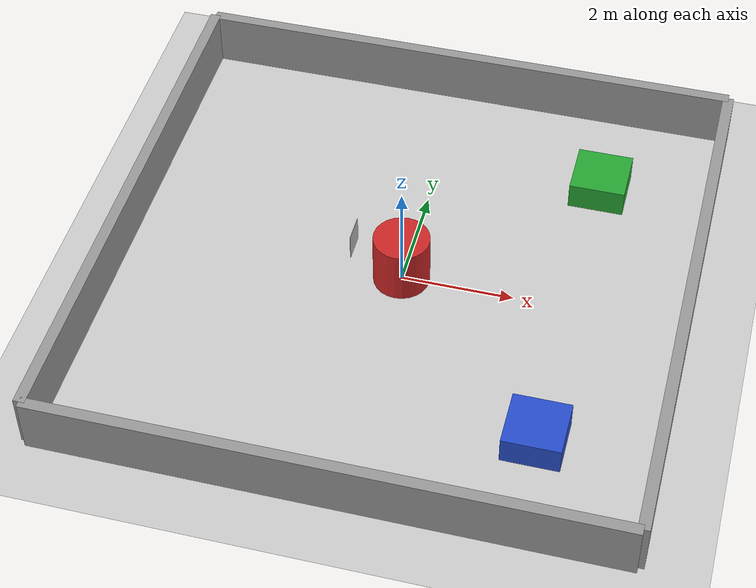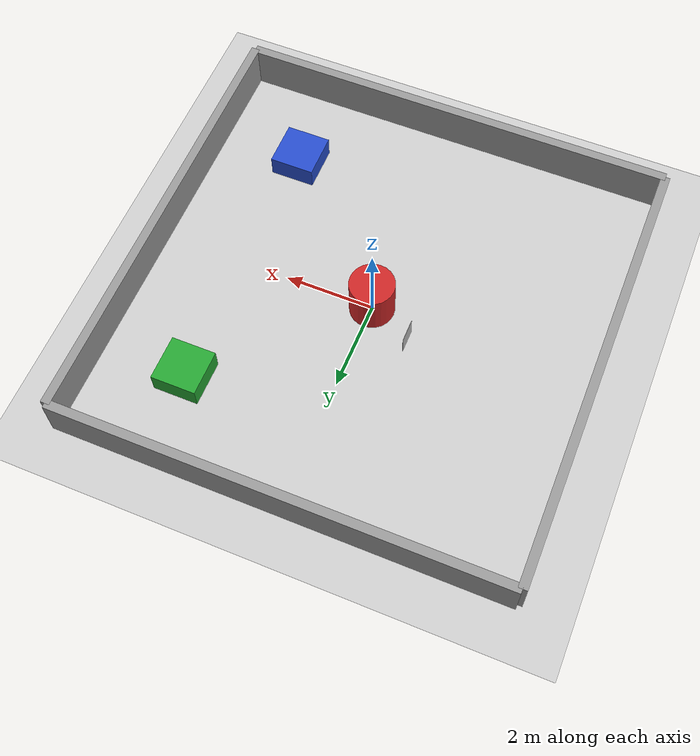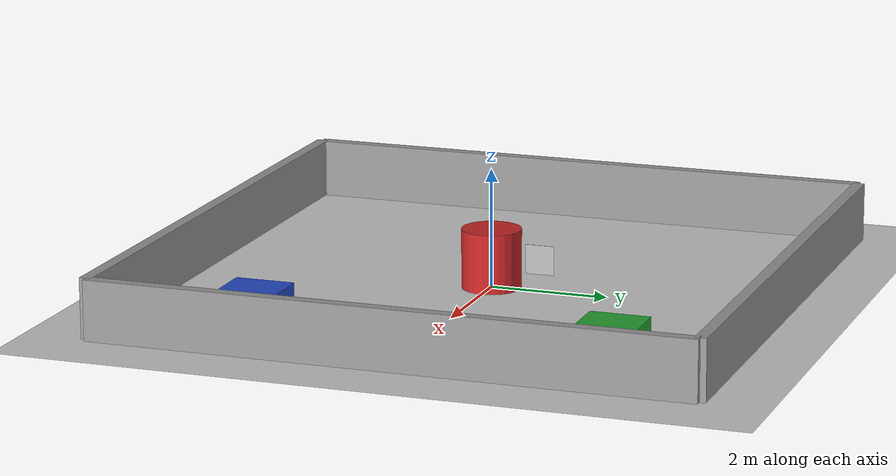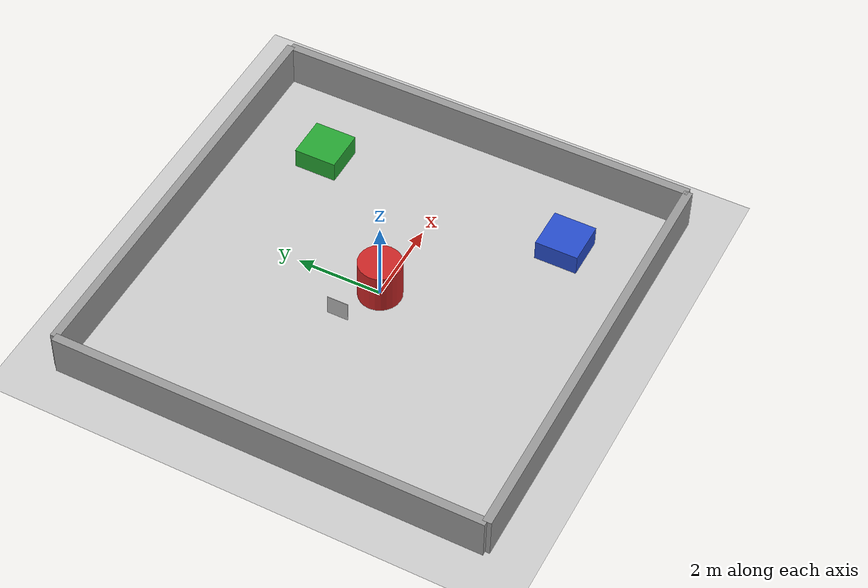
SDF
<?xml version="1.0" ?>
<sdf version="1.6">
  <world name="logistics_world">
    <!-- 기본 태양광 조명 -->
    <include>
      <uri>model://sun</uri>
    </include>

    <!-- 기본 바닥 -->
    <include>
      <uri>model://ground_plane</uri>
    </include>

    <!-- 시뮬레이션 물리 속도 설정 -->
    <physics type="ode">
      <real_time_update_rate>1000.0</real_time_update_rate>
      <max_step_size>0.001</max_step_size>
    </physics>

    <!-- 물류 창고 외벽 세팅 (10x10 사이즈) -->
    <!-- 위쪽 벽 -->
    <model name="wall_top">
      <static>true</static>
      <pose>0 5 0.5 0 0 0</pose>
      <link name="link">
        <collision name="collision"><geometry><box><size>10 0.2 1</size></box></geometry></collision>
        <visual name="visual">
          <geometry><box><size>10 0.2 1</size></box></geometry>
          <material><script><uri>file://media/materials/scripts/gazebo.material</uri><name>Gazebo/Grey</name></script></material>
        </visual>
      </link>
    </model>

    <!-- 아래쪽 벽 -->
    <model name="wall_bottom">
      <static>true</static>
      <pose>0 -5 0.5 0 0 0</pose>
      <link name="link">
        <collision name="collision"><geometry><box><size>10 0.2 1</size></box></geometry></collision>
        <visual name="visual">
          <geometry><box><size>10 0.2 1</size></box></geometry>
          <material><script><uri>file://media/materials/scripts/gazebo.material</uri><name>Gazebo/Grey</name></script></material>
        </visual>
      </link>
    </model>

    <!-- 왼쪽 벽 -->
    <model name="wall_left">
      <static>true</static>
      <pose>-5 0 0.5 0 0 0</pose>
      <link name="link">
        <collision name="collision"><geometry><box><size>0.2 10 1</size></box></geometry></collision>
        <visual name="visual">
          <geometry><box><size>0.2 10 1</size></box></geometry>
          <material><script><uri>file://media/materials/scripts/gazebo.material</uri><name>Gazebo/Grey</name></script></material>
        </visual>
      </link>
    </model>

    <!-- 오른쪽 벽 -->
    <model name="wall_right">
      <static>true</static>
      <pose>5 0 0.5 0 0 0</pose>
      <link name="link">
        <collision name="collision"><geometry><box><size>0.2 10 1</size></box></geometry></collision>
        <visual name="visual">
          <geometry><box><size>0.2 10 1</size></box></geometry>
          <material><script><uri>file://media/materials/scripts/gazebo.material</uri><name>Gazebo/Grey</name></script></material>
        </visual>
      </link>
    </model>

    <!-- 배송 목적지 A 구역 (초록색 상자) -->
    <model name="delivery_zone_a">
      <static>true</static>
      <pose>3 3 0.25 0 0 0</pose>
      <link name="link">
        <collision name="collision"><geometry><box><size>1 1 0.5</size></box></geometry></collision>
        <visual name="visual">
          <geometry><box><size>1 1 0.5</size></box></geometry>
          <material><script><uri>file://media/materials/scripts/gazebo.material</uri><name>Gazebo/Green</name></script></material>
        </visual>
      </link>
    </model>

    <!-- 배송 목적지 B 구역 (파란색 상자) -->
    <model name="delivery_zone_b">
      <static>true</static>
      <pose>3 -3 0.25 0 0 0</pose>
      <link name="link">
        <collision name="collision"><geometry><box><size>1 1 0.5</size></box></geometry></collision>
        <visual name="visual">
          <geometry><box><size>1 1 0.5</size></box></geometry>
          <material><script><uri>file://media/materials/scripts/gazebo.material</uri><name>Gazebo/Blue</name></script></material>
        </visual>
      </link>
    </model>

    <!-- 중앙 장애물 (빨간색 원기둥) -->
    <model name="center_obstacle">
      <static>true</static>
      <pose>0 0 0.5 0 0 0</pose>
      <link name="link">
        <collision name="collision"><geometry><cylinder><radius>0.5</radius><length>1</length></cylinder></geometry></collision>
        <visual name="visual">
          <geometry><cylinder><radius>0.5</radius><length>1</length></cylinder></geometry>
          <material><script><uri>file://media/materials/scripts/gazebo.material</uri><name>Gazebo/Red</name></script></material>
        </visual>
      </link>
    </model>

    <!-- 부착된 QR 코드 박스 (로봇이 볼 수 있도록 세워둠) -->
    <include>
      <uri>model://qr_box</uri>
      <!-- 중앙 장애물에 가려지지 않도록 로봇 바로 앞(-1.0) 우측(0.5)으로 이동 -->
      <pose>-1.0 0.5 0.25 0 1.5708 0</pose>
    </include>

  </world>
</sdf>

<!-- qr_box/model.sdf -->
<sdf version="1.6">
  <model name="qr_box">
    <static>true</static>
    <link name="link">
      <collision name="collision">
        <geometry>
          <box>
            <size>0.5 0.5 0.01</size>
          </box>
        </geometry>
      </collision>
      <visual name="visual">
        <geometry>
          <box>
            <size>0.5 0.5 0.01</size>
          </box>
        </geometry>
        <material>
          <script>
            <uri>model://qr_box/materials/scripts</uri>
            <uri>model://qr_box/materials/textures</uri>
            <name>QRBox/Image</name>
          </script>
        </material>
      </visual>
    </link>
  </model>
</sdf>
